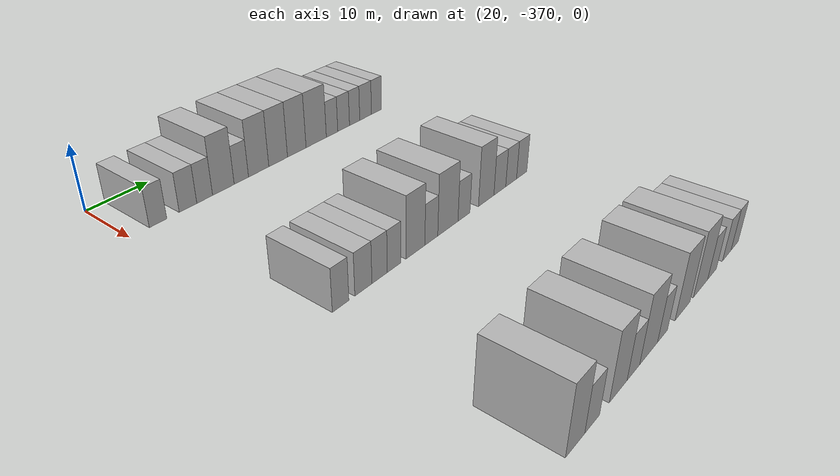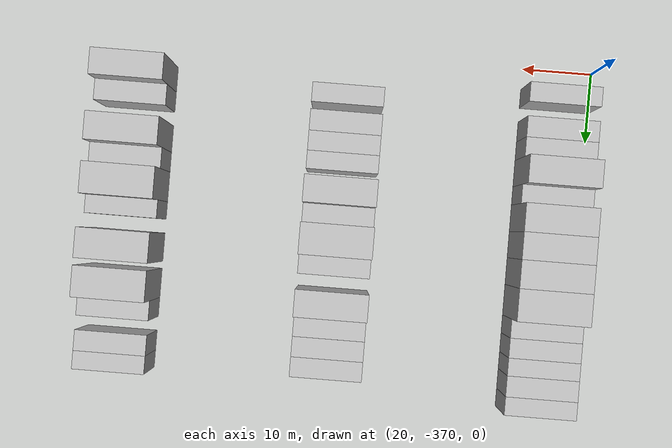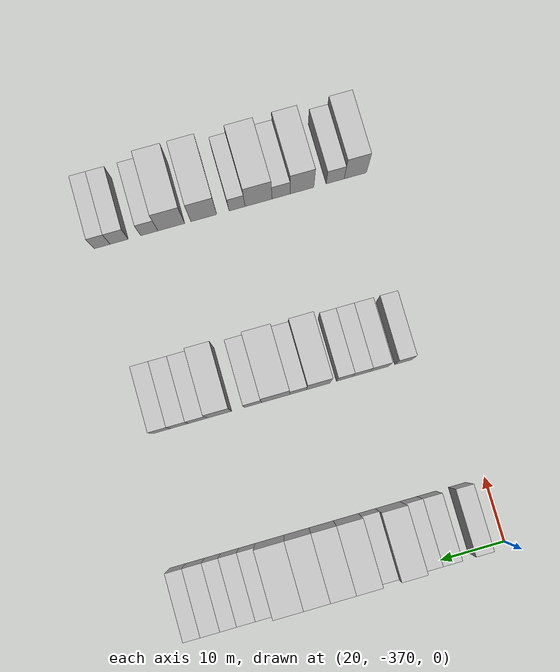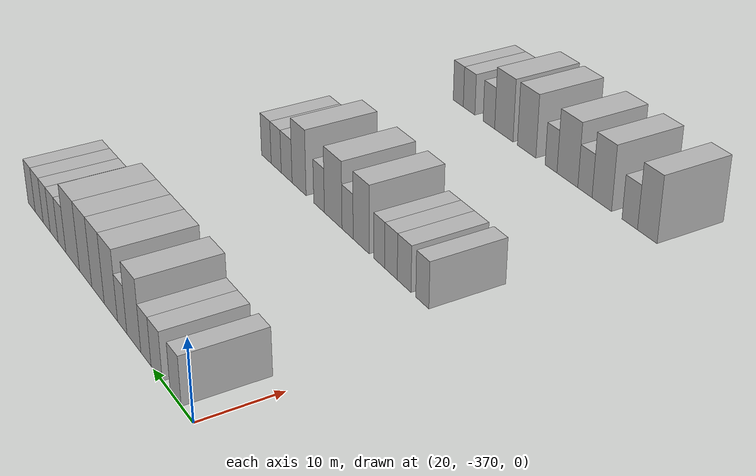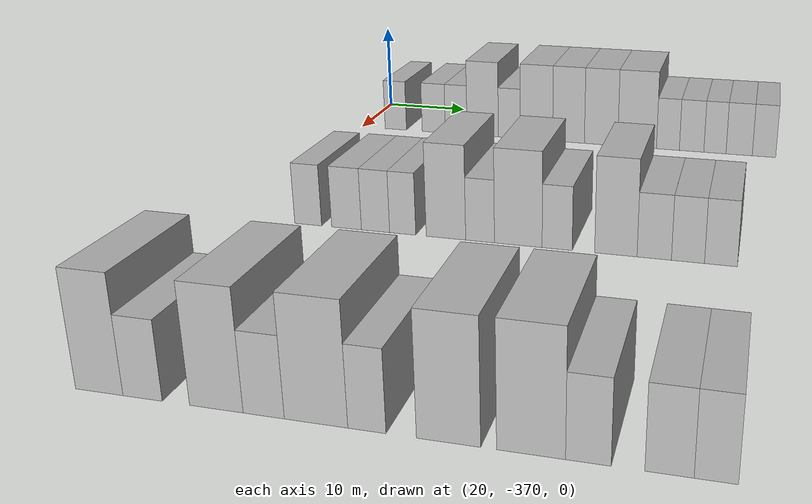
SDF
<sdf version="1.6">
 <world name="default">
  <model name="building_28">
   <static>1</static>
   <pose>25.0000 -365.6581 0 0.000000 0.000000 0.000000</pose>
   <link name="link">
    <pose>0 0 3.00 0 0 0</pose>
    <collision name="collision"><geometry><box><size>10.0000 2.7323 6.0000</size></box></geometry></collision>
    <visual name="visual">
     <cast_shadows>0</cast_shadows>
     <geometry><box><size>10.0000 2.7323 6.0000</size></box></geometry>
     <material>
      <script>
       <uri>model://HANNAS_wall/materials/scripts</uri>
       <uri>model://HANNAS_wall/materials/textures</uri>
       <name>vrc/HANNAS_wall</name>
      </script>
     </material>
    </visual>
   </link>
  </model>
  <model name="building_29">
   <static>1</static>
   <pose>25.0000 -360.8342 0 0.000000 0.000000 0.000000</pose>
   <link name="link">
    <pose>0 0 3.00 0 0 0</pose>
    <collision name="collision"><geometry><box><size>10.0000 2.9154 6.0000</size></box></geometry></collision>
    <visual name="visual">
     <cast_shadows>0</cast_shadows>
     <geometry><box><size>10.0000 2.9154 6.0000</size></box></geometry>
     <material>
      <script>
       <uri>model://HANNAS_wall/materials/scripts</uri>
       <uri>model://HANNAS_wall/materials/textures</uri>
       <name>vrc/HANNAS_wall</name>
      </script>
     </material>
    </visual>
   </link>
  </model>
  <model name="building_30">
   <static>1</static>
   <pose>25.0000 -358.0211 0 0.000000 0.000000 0.000000</pose>
   <link name="link">
    <pose>0 0 3.00 0 0 0</pose>
    <collision name="collision"><geometry><box><size>10.0000 2.7110 6.0000</size></box></geometry></collision>
    <visual name="visual">
     <cast_shadows>0</cast_shadows>
     <geometry><box><size>10.0000 2.7110 6.0000</size></box></geometry>
     <material>
      <script>
       <uri>model://HANNAS_wall/materials/scripts</uri>
       <uri>model://HANNAS_wall/materials/textures</uri>
       <name>vrc/HANNAS_wall</name>
      </script>
     </material>
    </visual>
   </link>
  </model>
  <model name="building_31">
   <static>1</static>
   <pose>25.0000 -354.7402 0 0.000000 0.000000 0.000000</pose>
   <link name="link">
    <pose>0 0 4.50 0 0 0</pose>
    <collision name="collision"><geometry><box><size>10.0000 3.8507 9.0000</size></box></geometry></collision>
    <visual name="visual">
     <cast_shadows>0</cast_shadows>
     <geometry><box><size>10.0000 3.8507 9.0000</size></box></geometry>
     <material>
      <script>
       <uri>model://HANNAS_wall/materials/scripts</uri>
       <uri>model://HANNAS_wall/materials/textures</uri>
       <name>vrc/HANNAS_wall</name>
      </script>
     </material>
    </visual>
   </link>
  </model>
  <model name="building_32">
   <static>1</static>
   <pose>25.0000 -351.4848 0 0.000000 0.000000 0.000000</pose>
   <link name="link">
    <pose>0 0 3.00 0 0 0</pose>
    <collision name="collision"><geometry><box><size>10.0000 2.6602 6.0000</size></box></geometry></collision>
    <visual name="visual">
     <cast_shadows>0</cast_shadows>
     <geometry><box><size>10.0000 2.6602 6.0000</size></box></geometry>
     <material>
      <script>
       <uri>model://HANNAS_wall/materials/scripts</uri>
       <uri>model://HANNAS_wall/materials/textures</uri>
       <name>vrc/HANNAS_wall</name>
      </script>
     </material>
    </visual>
   </link>
  </model>
  <model name="building_33">
   <static>1</static>
   <pose>25.0000 -348.1988 0 0.000000 0.000000 0.000000</pose>
   <link name="link">
    <pose>0 0 4.50 0 0 0</pose>
    <collision name="collision"><geometry><box><size>10.0000 3.9120 9.0000</size></box></geometry></collision>
    <visual name="visual">
     <cast_shadows>0</cast_shadows>
     <geometry><box><size>10.0000 3.9120 9.0000</size></box></geometry>
     <material>
      <script>
       <uri>model://HANNAS_wall/materials/scripts</uri>
       <uri>model://HANNAS_wall/materials/textures</uri>
       <name>vrc/HANNAS_wall</name>
      </script>
     </material>
    </visual>
   </link>
  </model>
  <model name="building_34">
   <static>1</static>
   <pose>25.0000 -344.3590 0 0.000000 0.000000 0.000000</pose>
   <link name="link">
    <pose>0 0 4.50 0 0 0</pose>
    <collision name="collision"><geometry><box><size>10.0000 3.7675 9.0000</size></box></geometry></collision>
    <visual name="visual">
     <cast_shadows>0</cast_shadows>
     <geometry><box><size>10.0000 3.7675 9.0000</size></box></geometry>
     <material>
      <script>
       <uri>model://HANNAS_wall/materials/scripts</uri>
       <uri>model://HANNAS_wall/materials/textures</uri>
       <name>vrc/HANNAS_wall</name>
      </script>
     </material>
    </visual>
   </link>
  </model>
  <model name="building_35">
   <static>1</static>
   <pose>25.0000 -340.5251 0 0.000000 0.000000 0.000000</pose>
   <link name="link">
    <pose>0 0 4.50 0 0 0</pose>
    <collision name="collision"><geometry><box><size>10.0000 3.9004 9.0000</size></box></geometry></collision>
    <visual name="visual">
     <cast_shadows>0</cast_shadows>
     <geometry><box><size>10.0000 3.9004 9.0000</size></box></geometry>
     <material>
      <script>
       <uri>model://HANNAS_wall/materials/scripts</uri>
       <uri>model://HANNAS_wall/materials/textures</uri>
       <name>vrc/HANNAS_wall</name>
      </script>
     </material>
    </visual>
   </link>
  </model>
  <model name="building_36">
   <static>1</static>
   <pose>25.0000 -336.3470 0 0.000000 0.000000 0.000000</pose>
   <link name="link">
    <pose>0 0 4.50 0 0 0</pose>
    <collision name="collision"><geometry><box><size>10.0000 4.4558 9.0000</size></box></geometry></collision>
    <visual name="visual">
     <cast_shadows>0</cast_shadows>
     <geometry><box><size>10.0000 4.4558 9.0000</size></box></geometry>
     <material>
      <script>
       <uri>model://HANNAS_wall/materials/scripts</uri>
       <uri>model://HANNAS_wall/materials/textures</uri>
       <name>vrc/HANNAS_wall</name>
      </script>
     </material>
    </visual>
   </link>
  </model>
  <model name="building_37">
   <static>1</static>
   <pose>25.0000 -332.8146 0 0.000000 0.000000 0.000000</pose>
   <link name="link">
    <pose>0 0 3.00 0 0 0</pose>
    <collision name="collision"><geometry><box><size>10.0000 2.6089 6.0000</size></box></geometry></collision>
    <visual name="visual">
     <cast_shadows>0</cast_shadows>
     <geometry><box><size>10.0000 2.6089 6.0000</size></box></geometry>
     <material>
      <script>
       <uri>model://HANNAS_wall/materials/scripts</uri>
       <uri>model://HANNAS_wall/materials/textures</uri>
       <name>vrc/HANNAS_wall</name>
      </script>
     </material>
    </visual>
   </link>
  </model>
  <model name="building_38">
   <static>1</static>
   <pose>25.0000 -330.1324 0 0.000000 0.000000 0.000000</pose>
   <link name="link">
    <pose>0 0 3.00 0 0 0</pose>
    <collision name="collision"><geometry><box><size>10.0000 2.7555 6.0000</size></box></geometry></collision>
    <visual name="visual">
     <cast_shadows>0</cast_shadows>
     <geometry><box><size>10.0000 2.7555 6.0000</size></box></geometry>
     <material>
      <script>
       <uri>model://HANNAS_wall/materials/scripts</uri>
       <uri>model://HANNAS_wall/materials/textures</uri>
       <name>vrc/HANNAS_wall</name>
      </script>
     </material>
    </visual>
   </link>
  </model>
  <model name="building_39">
   <static>1</static>
   <pose>25.0000 -327.5195 0 0.000000 0.000000 0.000000</pose>
   <link name="link">
    <pose>0 0 3.00 0 0 0</pose>
    <collision name="collision"><geometry><box><size>10.0000 2.4704 6.0000</size></box></geometry></collision>
    <visual name="visual">
     <cast_shadows>0</cast_shadows>
     <geometry><box><size>10.0000 2.4704 6.0000</size></box></geometry>
     <material>
      <script>
       <uri>model://HANNAS_wall/materials/scripts</uri>
       <uri>model://HANNAS_wall/materials/textures</uri>
       <name>vrc/HANNAS_wall</name>
      </script>
     </material>
    </visual>
   </link>
  </model>
  <model name="building_40">
   <static>1</static>
   <pose>25.0000 -324.8367 0 0.000000 0.000000 0.000000</pose>
   <link name="link">
    <pose>0 0 3.00 0 0 0</pose>
    <collision name="collision"><geometry><box><size>10.0000 2.8952 6.0000</size></box></geometry></collision>
    <visual name="visual">
     <cast_shadows>0</cast_shadows>
     <geometry><box><size>10.0000 2.8952 6.0000</size></box></geometry>
     <material>
      <script>
       <uri>model://HANNAS_wall/materials/scripts</uri>
       <uri>model://HANNAS_wall/materials/textures</uri>
       <name>vrc/HANNAS_wall</name>
      </script>
     </material>
    </visual>
   </link>
  </model>
  <model name="building_41">
   <static>1</static>
   <pose>25.0000 -322.1112 0 0.000000 0.000000 0.000000</pose>
   <link name="link">
    <pose>0 0 3.00 0 0 0</pose>
    <collision name="collision"><geometry><box><size>10.0000 2.5558 6.0000</size></box></geometry></collision>
    <visual name="visual">
     <cast_shadows>0</cast_shadows>
     <geometry><box><size>10.0000 2.5558 6.0000</size></box></geometry>
     <material>
      <script>
       <uri>model://HANNAS_wall/materials/scripts</uri>
       <uri>model://HANNAS_wall/materials/textures</uri>
       <name>vrc/HANNAS_wall</name>
      </script>
     </material>
    </visual>
   </link>
  </model>
  <model name="building_264">
   <static>1</static>
   <pose>55.0000 -363.2098 0 0.000000 0.000000 0.000000</pose>
   <link name="link">
    <pose>0 0 3.00 0 0 0</pose>
    <collision name="collision"><geometry><box><size>10.0000 2.7198 6.0000</size></box></geometry></collision>
    <visual name="visual">
     <cast_shadows>0</cast_shadows>
     <geometry><box><size>10.0000 2.7198 6.0000</size></box></geometry>
     <material>
      <script>
       <uri>model://HANNAS_wall/materials/scripts</uri>
       <uri>model://HANNAS_wall/materials/textures</uri>
       <name>vrc/HANNAS_wall</name>
      </script>
     </material>
    </visual>
   </link>
  </model>
  <model name="building_265">
   <static>1</static>
   <pose>55.0000 -359.3690 0 0.000000 0.000000 0.000000</pose>
   <link name="link">
    <pose>0 0 3.00 0 0 0</pose>
    <collision name="collision"><geometry><box><size>10.0000 2.9618 6.0000</size></box></geometry></collision>
    <visual name="visual">
     <cast_shadows>0</cast_shadows>
     <geometry><box><size>10.0000 2.9618 6.0000</size></box></geometry>
     <material>
      <script>
       <uri>model://HANNAS_wall/materials/scripts</uri>
       <uri>model://HANNAS_wall/materials/textures</uri>
       <name>vrc/HANNAS_wall</name>
      </script>
     </material>
    </visual>
   </link>
  </model>
  <model name="building_266">
   <static>1</static>
   <pose>55.0000 -356.5039 0 0.000000 0.000000 0.000000</pose>
   <link name="link">
    <pose>0 0 3.00 0 0 0</pose>
    <collision name="collision"><geometry><box><size>10.0000 2.7684 6.0000</size></box></geometry></collision>
    <visual name="visual">
     <cast_shadows>0</cast_shadows>
     <geometry><box><size>10.0000 2.7684 6.0000</size></box></geometry>
     <material>
      <script>
       <uri>model://HANNAS_wall/materials/scripts</uri>
       <uri>model://HANNAS_wall/materials/textures</uri>
       <name>vrc/HANNAS_wall</name>
      </script>
     </material>
    </visual>
   </link>
  </model>
  <model name="building_267">
   <static>1</static>
   <pose>55.0000 -353.8537 0 0.000000 0.000000 0.000000</pose>
   <link name="link">
    <pose>0 0 3.00 0 0 0</pose>
    <collision name="collision"><geometry><box><size>10.0000 2.5318 6.0000</size></box></geometry></collision>
    <visual name="visual">
     <cast_shadows>0</cast_shadows>
     <geometry><box><size>10.0000 2.5318 6.0000</size></box></geometry>
     <material>
      <script>
       <uri>model://HANNAS_wall/materials/scripts</uri>
       <uri>model://HANNAS_wall/materials/textures</uri>
       <name>vrc/HANNAS_wall</name>
      </script>
     </material>
    </visual>
   </link>
  </model>
  <model name="building_268">
   <static>1</static>
   <pose>55.0000 -349.7121 0 0.000000 0.000000 0.000000</pose>
   <link name="link">
    <pose>0 0 4.50 0 0 0</pose>
    <collision name="collision"><geometry><box><size>10.0000 3.7514 9.0000</size></box></geometry></collision>
    <visual name="visual">
     <cast_shadows>0</cast_shadows>
     <geometry><box><size>10.0000 3.7514 9.0000</size></box></geometry>
     <material>
      <script>
       <uri>model://HANNAS_wall/materials/scripts</uri>
       <uri>model://HANNAS_wall/materials/textures</uri>
       <name>vrc/HANNAS_wall</name>
      </script>
     </material>
    </visual>
   </link>
  </model>
  <model name="building_269">
   <static>1</static>
   <pose>55.0000 -346.4934 0 0.000000 0.000000 0.000000</pose>
   <link name="link">
    <pose>0 0 3.00 0 0 0</pose>
    <collision name="collision"><geometry><box><size>10.0000 2.6861 6.0000</size></box></geometry></collision>
    <visual name="visual">
     <cast_shadows>0</cast_shadows>
     <geometry><box><size>10.0000 2.6861 6.0000</size></box></geometry>
     <material>
      <script>
       <uri>model://HANNAS_wall/materials/scripts</uri>
       <uri>model://HANNAS_wall/materials/textures</uri>
       <name>vrc/HANNAS_wall</name>
      </script>
     </material>
    </visual>
   </link>
  </model>
  <model name="building_270">
   <static>1</static>
   <pose>55.0000 -342.9607 0 0.000000 0.000000 0.000000</pose>
   <link name="link">
    <pose>0 0 4.50 0 0 0</pose>
    <collision name="collision"><geometry><box><size>10.0000 4.3791 9.0000</size></box></geometry></collision>
    <visual name="visual">
     <cast_shadows>0</cast_shadows>
     <geometry><box><size>10.0000 4.3791 9.0000</size></box></geometry>
     <material>
      <script>
       <uri>model://HANNAS_wall/materials/scripts</uri>
       <uri>model://HANNAS_wall/materials/textures</uri>
       <name>vrc/HANNAS_wall</name>
      </script>
     </material>
    </visual>
   </link>
  </model>
  <model name="building_271">
   <static>1</static>
   <pose>55.0000 -339.4111 0 0.000000 0.000000 0.000000</pose>
   <link name="link">
    <pose>0 0 3.00 0 0 0</pose>
    <collision name="collision"><geometry><box><size>10.0000 2.7202 6.0000</size></box></geometry></collision>
    <visual name="visual">
     <cast_shadows>0</cast_shadows>
     <geometry><box><size>10.0000 2.7202 6.0000</size></box></geometry>
     <material>
      <script>
       <uri>model://HANNAS_wall/materials/scripts</uri>
       <uri>model://HANNAS_wall/materials/textures</uri>
       <name>vrc/HANNAS_wall</name>
      </script>
     </material>
    </visual>
   </link>
  </model>
  <model name="building_272">
   <static>1</static>
   <pose>55.0000 -334.1832 0 0.000000 0.000000 0.000000</pose>
   <link name="link">
    <pose>0 0 4.50 0 0 0</pose>
    <collision name="collision"><geometry><box><size>10.0000 3.7355 9.0000</size></box></geometry></collision>
    <visual name="visual">
     <cast_shadows>0</cast_shadows>
     <geometry><box><size>10.0000 3.7355 9.0000</size></box></geometry>
     <material>
      <script>
       <uri>model://HANNAS_wall/materials/scripts</uri>
       <uri>model://HANNAS_wall/materials/textures</uri>
       <name>vrc/HANNAS_wall</name>
      </script>
     </material>
    </visual>
   </link>
  </model>
  <model name="building_273">
   <static>1</static>
   <pose>55.0000 -330.8251 0 0.000000 0.000000 0.000000</pose>
   <link name="link">
    <pose>0 0 3.00 0 0 0</pose>
    <collision name="collision"><geometry><box><size>10.0000 2.9807 6.0000</size></box></geometry></collision>
    <visual name="visual">
     <cast_shadows>0</cast_shadows>
     <geometry><box><size>10.0000 2.9807 6.0000</size></box></geometry>
     <material>
      <script>
       <uri>model://HANNAS_wall/materials/scripts</uri>
       <uri>model://HANNAS_wall/materials/textures</uri>
       <name>vrc/HANNAS_wall</name>
      </script>
     </material>
    </visual>
   </link>
  </model>
  <model name="building_274">
   <static>1</static>
   <pose>55.0000 -327.9241 0 0.000000 0.000000 0.000000</pose>
   <link name="link">
    <pose>0 0 3.00 0 0 0</pose>
    <collision name="collision"><geometry><box><size>10.0000 2.8211 6.0000</size></box></geometry></collision>
    <visual name="visual">
     <cast_shadows>0</cast_shadows>
     <geometry><box><size>10.0000 2.8211 6.0000</size></box></geometry>
     <material>
      <script>
       <uri>model://HANNAS_wall/materials/scripts</uri>
       <uri>model://HANNAS_wall/materials/textures</uri>
       <name>vrc/HANNAS_wall</name>
      </script>
     </material>
    </visual>
   </link>
  </model>
  <model name="building_275">
   <static>1</static>
   <pose>55.0000 -325.1282 0 0.000000 0.000000 0.000000</pose>
   <link name="link">
    <pose>0 0 3.00 0 0 0</pose>
    <collision name="collision"><geometry><box><size>10.0000 2.7707 6.0000</size></box></geometry></collision>
    <visual name="visual">
     <cast_shadows>0</cast_shadows>
     <geometry><box><size>10.0000 2.7707 6.0000</size></box></geometry>
     <material>
      <script>
       <uri>model://HANNAS_wall/materials/scripts</uri>
       <uri>model://HANNAS_wall/materials/textures</uri>
       <name>vrc/HANNAS_wall</name>
      </script>
     </material>
    </visual>
   </link>
  </model>
  <model name="building_504">
   <static>1</static>
   <pose>85.0000 -364.4037 0 0.000000 0.000000 0.000000</pose>
   <link name="link">
    <pose>0 0 4.50 0 0 0</pose>
    <collision name="collision"><geometry><box><size>10.0000 3.6005 9.0000</size></box></geometry></collision>
    <visual name="visual">
     <cast_shadows>0</cast_shadows>
     <geometry><box><size>10.0000 3.6005 9.0000</size></box></geometry>
     <material>
      <script>
       <uri>model://HANNAS_wall/materials/scripts</uri>
       <uri>model://HANNAS_wall/materials/textures</uri>
       <name>vrc/HANNAS_wall</name>
      </script>
     </material>
    </visual>
   </link>
  </model>
  <model name="building_505">
   <static>1</static>
   <pose>85.0000 -361.1420 0 0.000000 0.000000 0.000000</pose>
   <link name="link">
    <pose>0 0 3.00 0 0 0</pose>
    <collision name="collision"><geometry><box><size>10.0000 2.9229 6.0000</size></box></geometry></collision>
    <visual name="visual">
     <cast_shadows>0</cast_shadows>
     <geometry><box><size>10.0000 2.9229 6.0000</size></box></geometry>
     <material>
      <script>
       <uri>model://HANNAS_wall/materials/scripts</uri>
       <uri>model://HANNAS_wall/materials/textures</uri>
       <name>vrc/HANNAS_wall</name>
      </script>
     </material>
    </visual>
   </link>
  </model>
  <model name="building_506">
   <static>1</static>
   <pose>85.0000 -355.7552 0 0.000000 0.000000 0.000000</pose>
   <link name="link">
    <pose>0 0 4.50 0 0 0</pose>
    <collision name="collision"><geometry><box><size>10.0000 3.8507 9.0000</size></box></geometry></collision>
    <visual name="visual">
     <cast_shadows>0</cast_shadows>
     <geometry><box><size>10.0000 3.8507 9.0000</size></box></geometry>
     <material>
      <script>
       <uri>model://HANNAS_wall/materials/scripts</uri>
       <uri>model://HANNAS_wall/materials/textures</uri>
       <name>vrc/HANNAS_wall</name>
      </script>
     </material>
    </visual>
   </link>
  </model>
  <model name="building_507">
   <static>1</static>
   <pose>85.0000 -352.3837 0 0.000000 0.000000 0.000000</pose>
   <link name="link">
    <pose>0 0 3.00 0 0 0</pose>
    <collision name="collision"><geometry><box><size>10.0000 2.8925 6.0000</size></box></geometry></collision>
    <visual name="visual">
     <cast_shadows>0</cast_shadows>
     <geometry><box><size>10.0000 2.8925 6.0000</size></box></geometry>
     <material>
      <script>
       <uri>model://HANNAS_wall/materials/scripts</uri>
       <uri>model://HANNAS_wall/materials/textures</uri>
       <name>vrc/HANNAS_wall</name>
      </script>
     </material>
    </visual>
   </link>
  </model>
  <model name="building_508">
   <static>1</static>
   <pose>85.0000 -348.7618 0 0.000000 0.000000 0.000000</pose>
   <link name="link">
    <pose>0 0 4.50 0 0 0</pose>
    <collision name="collision"><geometry><box><size>10.0000 4.3512 9.0000</size></box></geometry></collision>
    <visual name="visual">
     <cast_shadows>0</cast_shadows>
     <geometry><box><size>10.0000 4.3512 9.0000</size></box></geometry>
     <material>
      <script>
       <uri>model://HANNAS_wall/materials/scripts</uri>
       <uri>model://HANNAS_wall/materials/textures</uri>
       <name>vrc/HANNAS_wall</name>
      </script>
     </material>
    </visual>
   </link>
  </model>
  <model name="building_509">
   <static>1</static>
   <pose>85.0000 -345.3076 0 0.000000 0.000000 0.000000</pose>
   <link name="link">
    <pose>0 0 3.00 0 0 0</pose>
    <collision name="collision"><geometry><box><size>10.0000 2.5572 6.0000</size></box></geometry></collision>
    <visual name="visual">
     <cast_shadows>0</cast_shadows>
     <geometry><box><size>10.0000 2.5572 6.0000</size></box></geometry>
     <material>
      <script>
       <uri>model://HANNAS_wall/materials/scripts</uri>
       <uri>model://HANNAS_wall/materials/textures</uri>
       <name>vrc/HANNAS_wall</name>
      </script>
     </material>
    </visual>
   </link>
  </model>
  <model name="building_510">
   <static>1</static>
   <pose>85.0000 -339.9564 0 0.000000 0.000000 0.000000</pose>
   <link name="link">
    <pose>0 0 4.50 0 0 0</pose>
    <collision name="collision"><geometry><box><size>10.0000 4.1452 9.0000</size></box></geometry></collision>
    <visual name="visual">
     <cast_shadows>0</cast_shadows>
     <geometry><box><size>10.0000 4.1452 9.0000</size></box></geometry>
     <material>
      <script>
       <uri>model://HANNAS_wall/materials/scripts</uri>
       <uri>model://HANNAS_wall/materials/textures</uri>
       <name>vrc/HANNAS_wall</name>
      </script>
     </material>
    </visual>
   </link>
  </model>
  <model name="building_511">
   <static>1</static>
   <pose>85.0000 -334.7407 0 0.000000 0.000000 0.000000</pose>
   <link name="link">
    <pose>0 0 4.50 0 0 0</pose>
    <collision name="collision"><geometry><box><size>10.0000 4.2862 9.0000</size></box></geometry></collision>
    <visual name="visual">
     <cast_shadows>0</cast_shadows>
     <geometry><box><size>10.0000 4.2862 9.0000</size></box></geometry>
     <material>
      <script>
       <uri>model://HANNAS_wall/materials/scripts</uri>
       <uri>model://HANNAS_wall/materials/textures</uri>
       <name>vrc/HANNAS_wall</name>
      </script>
     </material>
    </visual>
   </link>
  </model>
  <model name="building_512">
   <static>1</static>
   <pose>85.0000 -331.2139 0 0.000000 0.000000 0.000000</pose>
   <link name="link">
    <pose>0 0 3.00 0 0 0</pose>
    <collision name="collision"><geometry><box><size>10.0000 2.7674 6.0000</size></box></geometry></collision>
    <visual name="visual">
     <cast_shadows>0</cast_shadows>
     <geometry><box><size>10.0000 2.7674 6.0000</size></box></geometry>
     <material>
      <script>
       <uri>model://HANNAS_wall/materials/scripts</uri>
       <uri>model://HANNAS_wall/materials/textures</uri>
       <name>vrc/HANNAS_wall</name>
      </script>
     </material>
    </visual>
   </link>
  </model>
  <model name="building_513">
   <static>1</static>
   <pose>85.0000 -326.3889 0 0.000000 0.000000 0.000000</pose>
   <link name="link">
    <pose>0 0 3.00 0 0 0</pose>
    <collision name="collision"><geometry><box><size>10.0000 2.8826 6.0000</size></box></geometry></collision>
    <visual name="visual">
     <cast_shadows>0</cast_shadows>
     <geometry><box><size>10.0000 2.8826 6.0000</size></box></geometry>
     <material>
      <script>
       <uri>model://HANNAS_wall/materials/scripts</uri>
       <uri>model://HANNAS_wall/materials/textures</uri>
       <name>vrc/HANNAS_wall</name>
      </script>
     </material>
    </visual>
   </link>
  </model>
  <model name="building_514">
   <static>1</static>
   <pose>85.0000 -323.6732 0 0.000000 0.000000 0.000000</pose>
   <link name="link">
    <pose>0 0 3.00 0 0 0</pose>
    <collision name="collision"><geometry><box><size>10.0000 2.5488 6.0000</size></box></geometry></collision>
    <visual name="visual">
     <cast_shadows>0</cast_shadows>
     <geometry><box><size>10.0000 2.5488 6.0000</size></box></geometry>
     <material>
      <script>
       <uri>model://HANNAS_wall/materials/scripts</uri>
       <uri>model://HANNAS_wall/materials/textures</uri>
       <name>vrc/HANNAS_wall</name>
      </script>
     </material>
    </visual>
   </link>
  </model>
 </world>
</sdf>
